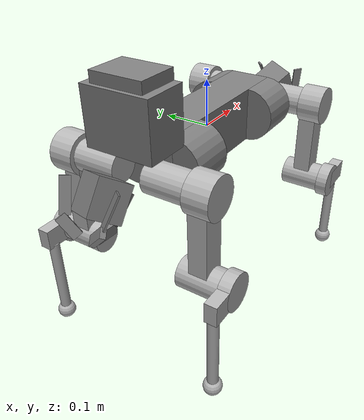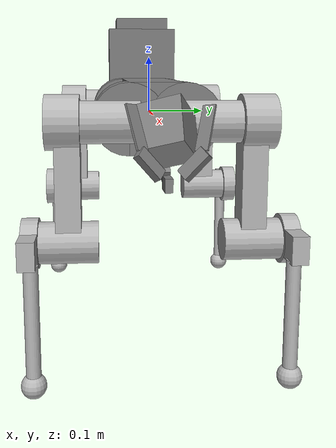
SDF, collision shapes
<?xml version='1.0' encoding='utf-8'?>
<sdf version="1.6">
  <model name="cerberus_anymal_c_sensor_config_1">
    <link name="base">
      <pose>0 0 0 0 0 0</pose>
      <inertial>
        <pose>-0.0143195 -0.0001053 0.0059904 0 0 0</pose>
        <mass>29.23832</mass>
        <inertia>
          <ixx>0.236867</ixx>
          <ixy>0.00846724</ixy>
          <ixz>0.0854364</ixz>
          <iyy>2.06849</iyy>
          <iyz>-0.000253399</iyz>
          <izz>2.09006</izz>
        </inertia>
      </inertial>
      <collision name="base_collision">
        <pose>0 0 0 0 0 0</pose>
        <geometry>
          <box>
            <size>0.377 0.091 0.117</size>
          </box>
        </geometry>
      </collision>
      <collision name="base_collision_1">
        <pose>0.141375 0.0455 0 0 1.5708 0</pose>
        <geometry>
          <cylinder>
            <length>0.09425</length>
            <radius>0.0585</radius>
          </cylinder>
        </geometry>
      </collision>
      <collision name="base_collision_2">
        <pose>-0.141375 0.0455 0 0 1.5708 0</pose>
        <geometry>
          <cylinder>
            <length>0.09425</length>
            <radius>0.0585</radius>
          </cylinder>
        </geometry>
      </collision>
      <collision name="base_collision_3">
        <pose>0.141375 -0.0455 0 0 1.5708 0</pose>
        <geometry>
          <cylinder>
            <length>0.09425</length>
            <radius>0.0585</radius>
          </cylinder>
        </geometry>
      </collision>
      <collision name="base_collision_4">
        <pose>-0.141375 -0.0455 0 0 1.5708 0</pose>
        <geometry>
          <cylinder>
            <length>0.09425</length>
            <radius>0.0585</radius>
          </cylinder>
        </geometry>
      </collision>
      <collision name="base_fixed_joint_lump__alphasense_mesh_collision_5">
        <pose>-0.2272387 0 0.15275 0 0 0</pose>
        <geometry>
          <box>
            <size>0.0832 0.10725 0.0637</size>
          </box>
        </geometry>
      </collision>
      <collision name="base_fixed_joint_lump__bpearl_front_collision_6">
        <pose>0.32600555 0 -0.00653445 -2.85388 -0.54666 -0.517507</pose>
        <geometry>
          <box>
            <size>0.065 0.065 0.0715</size>
          </box>
        </geometry>
      </collision>
      <collision name="base_fixed_joint_lump__bpearl_front_protection_bars_collision_collision_7">
        <pose>0.2852694 0 -0.050349 3.14159 0.893609 3.14159</pose>
        <geometry>
          <box>
            <size>0.0195 0.0117 0.065</size>
          </box>
        </geometry>
      </collision>
      <collision name="base_fixed_joint_lump__bpearl_front_protection_bars_collision_collision_8">
        <pose>0.329524 0 -0.0772876 1e-06 1.52542 1e-06</pose>
        <geometry>
          <box>
            <size>0.0195 0.01105 0.0442</size>
          </box>
        </geometry>
      </collision>
      <collision name="base_fixed_joint_lump__bpearl_front_protection_bars_collision_collision_9">
        <pose>0.3639922 -0.0448136 0.00477295 -2.68278 -0.125844 -0.83529</pose>
        <geometry>
          <box>
            <size>0.0195 0.00325 0.065</size>
          </box>
        </geometry>
      </collision>
      <collision name="base_fixed_joint_lump__bpearl_front_protection_bars_collision_collision_10">
        <pose>0.3802565 -0.02888015 -0.04176445 -2.61177 0.516776 -0.491692</pose>
        <geometry>
          <box>
            <size>0.0195 0.0104 0.0442</size>
          </box>
        </geometry>
      </collision>
      <collision name="base_fixed_joint_lump__bpearl_front_protection_bars_collision_collision_11">
        <pose>0.3620292 0.04672005 0.0033982 2.66301 -0.103127 0.880443</pose>
        <geometry>
          <box>
            <size>0.0195 0.00325 0.065</size>
          </box>
        </geometry>
      </collision>
      <collision name="base_fixed_joint_lump__bpearl_front_protection_bars_collision_collision_12">
        <pose>0.37899095 0.03010865 -0.0426504 2.58142 0.531321 0.5194</pose>
        <geometry>
          <box>
            <size>0.0195 0.0104 0.0442</size>
          </box>
        </geometry>
      </collision>
      <collision name="base_fixed_joint_lump__bpearl_rear_collision_13">
        <pose>-0.32600555 0 -0.00653445 -2.85388 -0.54666 2.62409</pose>
        <geometry>
          <box>
            <size>0.065 0.065 0.0715</size>
          </box>
        </geometry>
      </collision>
      <collision name="base_fixed_joint_lump__bpearl_rear_protection_bars_collision_collision_14">
        <pose>-0.2852694 0 -0.050349 3.14159 0.893609 0</pose>
        <geometry>
          <box>
            <size>0.0195 0.0117 0.065</size>
          </box>
        </geometry>
      </collision>
      <collision name="base_fixed_joint_lump__bpearl_rear_protection_bars_collision_collision_15">
        <pose>-0.329524 0 -0.0772876 1e-06 1.52542 -3.14159</pose>
        <geometry>
          <box>
            <size>0.0195 0.01105 0.0442</size>
          </box>
        </geometry>
      </collision>
      <collision name="base_fixed_joint_lump__bpearl_rear_protection_bars_collision_collision_16">
        <pose>-0.3676608 0.04063735 0.00734175 -2.72553 -0.168473 2.39838</pose>
        <geometry>
          <box>
            <size>0.0195 0.00325 0.065</size>
          </box>
        </geometry>
      </collision>
      <collision name="base_fixed_joint_lump__bpearl_rear_protection_bars_collision_collision_17">
        <pose>-0.38262055 0.0261885 -0.0401089 -2.67308 0.489917 2.70612</pose>
        <geometry>
          <box>
            <size>0.0195 0.0104 0.0442</size>
          </box>
        </geometry>
      </collision>
      <collision name="base_fixed_joint_lump__bpearl_rear_protection_bars_collision_collision_18">
        <pose>-0.35998625 -0.04849845 0.0019682 2.64433 -0.079552 -2.21655</pose>
        <geometry>
          <box>
            <size>0.0195 0.00325 0.065</size>
          </box>
        </geometry>
      </collision>
      <collision name="base_fixed_joint_lump__bpearl_rear_protection_bars_collision_collision_19">
        <pose>-0.3776747 -0.0312546 -0.0435721 2.55129 0.546584 -2.59477</pose>
        <geometry>
          <box>
            <size>0.0195 0.0104 0.0442</size>
          </box>
        </geometry>
      </collision>
      <collision name="base_fixed_joint_lump__perception_head_cage_collision_20">
        <pose>-0.23137205 0 0.10491 0 0 0</pose>
        <geometry>
          <box>
            <size>0.0919815 0.140036 0.11492</size>
          </box>
        </geometry>
      </collision>
      <collision name="base_fixed_joint_lump__imu_link_collision_21">
        <pose>0.16172 0.0054275 0.033332 0 0 1.5708</pose>
        <geometry>
          <box>
            <size>0.0156 0.0156 0.0065</size>
          </box>
        </geometry>
      </collision>
      <visual name="base_visual">
        <pose>0 0 0 0 0 0</pose>
        <geometry>
          <mesh>
            <scale>0.65 0.65 0.65</scale>
            <uri>meshes/base.dae</uri>
          </mesh>
        </geometry>
      </visual>
      <visual name="base_fixed_joint_lump__LF_HAA_visual_1">
        <pose>0.194935 0.0676 0 2.61799 0 0</pose>
        <geometry>
          <mesh>
            <scale>0.65 0.65 0.65</scale>
            <uri>meshes/drive.dae</uri>
          </mesh>
        </geometry>
      </visual>
      <visual name="base_fixed_joint_lump__LH_HAA_visual_2">
        <pose>-0.194935 0.0676 0 -2.61799 0 3.14159</pose>
        <geometry>
          <mesh>
            <scale>0.65 0.65 0.65</scale>
            <uri>meshes/drive.dae</uri>
          </mesh>
        </geometry>
      </visual>
      <visual name="base_fixed_joint_lump__RF_HAA_visual_3">
        <pose>0.194935 -0.0676 0 -2.61799 0 0</pose>
        <geometry>
          <mesh>
            <scale>0.65 0.65 0.65</scale>
            <uri>meshes/drive.dae</uri>
          </mesh>
        </geometry>
      </visual>
      <visual name="base_fixed_joint_lump__RH_HAA_visual_4">
        <pose>-0.194935 -0.0676 0 2.61799 0 3.14159</pose>
        <geometry>
          <mesh>
            <scale>0.65 0.65 0.65</scale>
            <uri>meshes/drive.dae</uri>
          </mesh>
        </geometry>
      </visual>
      <visual name="base_fixed_joint_lump__battery_visual_5">
        <pose>0 0 0 0 0 0</pose>
        <geometry>
          <mesh>
            <scale>0.65 0.65 0.65</scale>
            <uri>meshes/battery.dae</uri>
          </mesh>
        </geometry>
      </visual>
      <visual name="base_fixed_joint_lump__bottom_shell_visual_6">
        <pose>0 0 0 0 0 0</pose>
        <geometry>
          <mesh>
            <scale>0.65 0.65 0.65</scale>
            <uri>meshes/bottom_shell.dae</uri>
          </mesh>
        </geometry>
      </visual>
      <visual name="base_fixed_joint_lump__handle_visual_7">
        <pose>0 0 0 0 0 0</pose>
        <geometry>
          <mesh>
            <scale>0.65 0.65 0.65</scale>
            <uri>meshes/handle.dae</uri>
          </mesh>
        </geometry>
      </visual>
      <visual name="base_fixed_joint_lump__hatch_visual_8">
        <pose>0.0754 0 0.04745 0 0 0</pose>
        <geometry>
          <mesh>
            <scale>0.65 0.65 0.65</scale>
            <uri>meshes/hatch.dae</uri>
          </mesh>
        </geometry>
      </visual>
      <visual name="base_fixed_joint_lump__remote_visual_9">
        <pose>0 0 0 0 0 0</pose>
        <geometry>
          <mesh>
            <scale>0.65 0.65 0.65</scale>
            <uri>meshes/remote.dae</uri>
          </mesh>
        </geometry>
      </visual>
      <visual name="base_fixed_joint_lump__alphasense_mesh_visual_10">
        <pose>-0.2366 0 0 0 0 0</pose>
        <geometry>
          <mesh>
            <scale>0.00065 0.00065 0.00065</scale>
            <uri>meshes/alphasense.stl</uri>
          </mesh>
        </geometry>
        <material>
          <ambient>0.5 0.5 0.5 1</ambient>
          <diffuse>0.5 0.5 0.5 1</diffuse>
          <specular>0.5 0.5 0.5 1</specular>
        </material>
      </visual>
      <visual name="base_fixed_joint_lump__bpearl_front_visual_11">
        <pose>0.3055 0 0.02275 -2.85388 -0.54666 -0.517507</pose>
        <geometry>
          <mesh>
            <scale>0.00065 0.00065 0.00065</scale>
            <uri>meshes/rslidar_bpearl.stl</uri>
          </mesh>
        </geometry>
        <material>
          <ambient>0.5 0.5 0.5 1</ambient>
          <diffuse>0.5 0.5 0.5 1</diffuse>
          <specular>0.5 0.5 0.5 1</specular>
        </material>
      </visual>
      <visual name="base_fixed_joint_lump__bpearl_front_protection_bars_visual_12">
        <pose>0.26942175 0 0 0 0 -3.14159</pose>
        <geometry>
          <mesh>
            <scale>0.00065 0.00065 0.00065</scale>
            <uri>meshes/bpearl_protection_bars.stl</uri>
          </mesh>
        </geometry>
        <material>
          <ambient>0.5 0.5 0.5 1</ambient>
          <diffuse>0.5 0.5 0.5 1</diffuse>
          <specular>0.5 0.5 0.5 1</specular>
        </material>
      </visual>
      <visual name="base_fixed_joint_lump__bpearl_rear_visual_13">
        <pose>-0.3055 0 0.02275 -2.85388 -0.54666 2.62409</pose>
        <geometry>
          <mesh>
            <scale>0.00065 0.00065 0.00065</scale>
            <uri>meshes/rslidar_bpearl.stl</uri>
          </mesh>
        </geometry>
        <material>
          <ambient>0.5 0.5 0.5 1</ambient>
          <diffuse>0.5 0.5 0.5 1</diffuse>
          <specular>0.5 0.5 0.5 1</specular>
        </material>
      </visual>
      <visual name="base_fixed_joint_lump__bpearl_rear_protection_bars_visual_14">
        <pose>-0.26942175 0 0 0 0 0</pose>
        <geometry>
          <mesh>
            <scale>0.00065 0.00065 0.00065</scale>
            <uri>meshes/bpearl_protection_bars.stl</uri>
          </mesh>
        </geometry>
        <material>
          <ambient>0.5 0.5 0.5 1</ambient>
          <diffuse>0.5 0.5 0.5 1</diffuse>
          <specular>0.5 0.5 0.5 1</specular>
        </material>
      </visual>
      <visual name="base_fixed_joint_lump__perception_head_cage_visual_15">
        <pose>-0.2366 0 0 0 0 0</pose>
        <geometry>
          <mesh>
            <scale>0.00065 0.00065 0.00065</scale>
            <uri>meshes/perception_head.stl</uri>
          </mesh>
        </geometry>
        <material>
          <ambient>0.5 0.5 0.5 1</ambient>
          <diffuse>0.5 0.5 0.5 1</diffuse>
          <specular>0.5 0.5 0.5 1</specular>
        </material>
      </visual>
      <visual name="base_fixed_joint_lump__lidar_visual_16">
        <pose>-0.2366 0 0.09243 0 0 -1.5708</pose>
        <geometry>
          <mesh>
            <scale>0.65 0.65 0.65</scale>
            <uri>meshes/lidar.dae</uri>
          </mesh>
        </geometry>
      </visual>
      <visual name="base_fixed_joint_lump__top_shell_visual_17">
        <pose>0 0 0 0 0 0</pose>
        <geometry>
          <mesh>
            <scale>0.65 0.65 0.65</scale>
            <uri>meshes/top_shell.dae</uri>
          </mesh>
        </geometry>
      </visual>
      <visual name="base_fixed_joint_lump__imu_link_visual_18">
        <pose>0.16172 0.0054275 0.033332 0 0 1.5708</pose>
        <geometry>
          <box>
            <size>0.0156 0.0156 0.0065</size>
          </box>
        </geometry>
      </visual>
      <!-- Sensors -->
      <sensor name="imu_sensor" type="imu">
        <always_on>1</always_on>
        <update_rate>400</update_rate>
        <imu>
                    <enable_orientation>0</enable_orientation>
                    <angular_velocity>
                        <x>
                            <noise type="gaussian">
                                <mean>0</mean>
                                <stddev>0.009</stddev>
                                <bias_mean>0.00075</bias_mean>
                                <bias_stddev>0.005</bias_stddev>
                                <dynamic_bias_stddev>0.00002</dynamic_bias_stddev>
                                <dynamic_bias_correlation_time>400.0</dynamic_bias_correlation_time>
                                <precision>0.00025</precision>
                            </noise>
                        </x>
                        <y>
                            <noise type="gaussian">
                                <mean>0</mean>
                                <stddev>0.009</stddev>
                                <bias_mean>0.00075</bias_mean>
                                <bias_stddev>0.005</bias_stddev>
                                <dynamic_bias_stddev>0.00002</dynamic_bias_stddev>
                                <dynamic_bias_correlation_time>400.0</dynamic_bias_correlation_time>
                                <precision>0.00025</precision>
                            </noise>
                        </y>
                        <z>
                            <noise type="gaussian">
                                <mean>0</mean>
                                <stddev>0.009</stddev>
                                <bias_mean>0.00075</bias_mean>
                                <bias_stddev>0.005</bias_stddev>
                                <dynamic_bias_stddev>0.00002</dynamic_bias_stddev>
                                <dynamic_bias_correlation_time>400.0</dynamic_bias_correlation_time>
                                <precision>0.00025</precision>
                            </noise>
                        </z>
                    </angular_velocity>
                    <linear_acceleration>
                        <x>
                            <noise type="gaussian">
                                <mean>0</mean>
                                <stddev>0.021</stddev>
                                <bias_mean>0.05</bias_mean>
                                <bias_stddev>0.0075</bias_stddev>
                                <dynamic_bias_stddev>0.000375</dynamic_bias_stddev>
                                <dynamic_bias_correlation_time>175.0</dynamic_bias_correlation_time>
                                <precision>0.005</precision>
                            </noise>
                        </x>
                        <y>
                            <noise type="gaussian">
                                <mean>0</mean>
                                <stddev>0.021</stddev>
                                <bias_mean>0.05</bias_mean>
                                <bias_stddev>0.0075</bias_stddev>
                                <dynamic_bias_stddev>0.000375</dynamic_bias_stddev>
                                <dynamic_bias_correlation_time>175.0</dynamic_bias_correlation_time>
                                <precision>0.005</precision>
                            </noise>
                        </y>
                        <z>
                            <noise type="gaussian">
                                <mean>0</mean>
                                <stddev>0.021</stddev>
                                <bias_mean>0.05</bias_mean>
                                <bias_stddev>0.0075</bias_stddev>
                                <dynamic_bias_stddev>0.000375</dynamic_bias_stddev>
                                <dynamic_bias_correlation_time>175.0</dynamic_bias_correlation_time>
                                <precision>0.005</precision>
                            </noise>
                        </z>
                    </linear_acceleration>
                </imu>
        <pose frame="">0.249 0.008 0.046 0.000 -0.000 1.571</pose>
      </sensor>
      <sensor name="perception_head_imu_sensor" type="imu">
        <always_on>1</always_on>
        <update_rate>200</update_rate>
        <imu>
                    <enable_orientation>0</enable_orientation>
                    <angular_velocity>
                        <x>
                            <noise type="gaussian">
                                <mean>0</mean>
                                <stddev>0.009</stddev>
                                <bias_mean>0.00075</bias_mean>
                                <bias_stddev>0.005</bias_stddev>
                                <dynamic_bias_stddev>0.00002</dynamic_bias_stddev>
                                <dynamic_bias_correlation_time>400.0</dynamic_bias_correlation_time>
                                <precision>0.00025</precision>
                            </noise>
                        </x>
                        <y>
                            <noise type="gaussian">
                                <mean>0</mean>
                                <stddev>0.009</stddev>
                                <bias_mean>0.00075</bias_mean>
                                <bias_stddev>0.005</bias_stddev>
                                <dynamic_bias_stddev>0.00002</dynamic_bias_stddev>
                                <dynamic_bias_correlation_time>400.0</dynamic_bias_correlation_time>
                                <precision>0.00025</precision>
                            </noise>
                        </y>
                        <z>
                            <noise type="gaussian">
                                <mean>0</mean>
                                <stddev>0.009</stddev>
                                <bias_mean>0.00075</bias_mean>
                                <bias_stddev>0.005</bias_stddev>
                                <dynamic_bias_stddev>0.00002</dynamic_bias_stddev>
                                <dynamic_bias_correlation_time>400.0</dynamic_bias_correlation_time>
                                <precision>0.00025</precision>
                            </noise>
                        </z>
                    </angular_velocity>
                    <linear_acceleration>
                        <x>
                            <noise type="gaussian">
                                <mean>0</mean>
                                <stddev>0.021</stddev>
                                <bias_mean>0.05</bias_mean>
                                <bias_stddev>0.0075</bias_stddev>
                                <dynamic_bias_stddev>0.000375</dynamic_bias_stddev>
                                <dynamic_bias_correlation_time>175.0</dynamic_bias_correlation_time>
                                <precision>0.005</precision>
                            </noise>
                        </x>
                        <y>
                            <noise type="gaussian">
                                <mean>0</mean>
                                <stddev>0.021</stddev>
                                <bias_mean>0.05</bias_mean>
                                <bias_stddev>0.0075</bias_stddev>
                                <dynamic_bias_stddev>0.000375</dynamic_bias_stddev>
                                <dynamic_bias_correlation_time>175.0</dynamic_bias_correlation_time>
                                <precision>0.005</precision>
                            </noise>
                        </y>
                        <z>
                            <noise type="gaussian">
                                <mean>0</mean>
                                <stddev>0.021</stddev>
                                <bias_mean>0.05</bias_mean>
                                <bias_stddev>0.0075</bias_stddev>
                                <dynamic_bias_stddev>0.000375</dynamic_bias_stddev>
                                <dynamic_bias_correlation_time>175.0</dynamic_bias_correlation_time>
                                <precision>0.005</precision>
                            </noise>
                        </z>
                    </linear_acceleration>
                </imu>
        <pose frame="">-0.327 -0.005 0.206 0.000 0.000 -1.571</pose>
      </sensor>
      <sensor name="front_laser" type="gpu_lidar">
        <visualize>0</visualize>
        <update_rate>10</update_rate>
        <lidar>
          <scan>
            <horizontal>
              <samples>1800</samples>
              <resolution>1.0</resolution>
              <min_angle>-3.14159</min_angle>
              <max_angle>3.14159</max_angle>
            </horizontal>
            <vertical>
              <samples>16</samples>
              <resolution>1</resolution>
              <min_angle>-0.261799</min_angle>
              <max_angle>0.261799</max_angle>
            </vertical>
          </scan>
          <range>
            <min>0.05</min>
            <max>100</max>
            <resolution>0.01</resolution>
          </range>
          <noise>
            <type>gaussian</type>
            <mean>0</mean>
            <stddev>0.01</stddev>
          </noise>
        </lidar>
        <pose frame="">-0.364 0.000 0.142 0.000 0.000 -1.571</pose>
      </sensor>
      <sensor name="front_bpearl" type="gpu_lidar">
        <visualize>0</visualize>
        <update_rate>10</update_rate>
        <lidar>
          <scan>
            <horizontal>
              <samples>440</samples>
              <resolution>1</resolution>
              <min_angle>-3.14159</min_angle>
              <max_angle>3.14159</max_angle>
            </horizontal>
            <vertical>
              <samples>32</samples>
              <resolution>1</resolution>
              <min_angle>0.040360739</min_angle>
              <max_angle>1.562069681</max_angle>
            </vertical>
          </scan>
          <range>
            <min>0.3</min>
            <max>31</max>
            <resolution>0.001</resolution>
          </range>
          <noise>
            <type>gaussian</type>
            <mean>0</mean>
            <stddev>0.008</stddev>
          </noise>
        </lidar>
        <pose frame="">0.524 0.000 -0.042 -2.576 0.245 -1.936</pose>
      </sensor>
      <sensor name="rear_bpearl" type="gpu_lidar">
        <visualize>0</visualize>
        <update_rate>10</update_rate>
        <lidar>
          <scan>
            <horizontal>
              <samples>440</samples>
              <resolution>1</resolution>
              <min_angle>-3.14159</min_angle>
              <max_angle>3.14159</max_angle>
            </horizontal>
            <vertical>
              <samples>32</samples>
              <resolution>1</resolution>
              <min_angle>0.040360739</min_angle>
              <max_angle>1.562069681</max_angle>
            </vertical>
          </scan>
          <range>
            <min>0.3</min>
            <max>31</max>
            <resolution>0.001</resolution>
          </range>
          <noise>
            <type>gaussian</type>
            <mean>0</mean>
            <stddev>0.008</stddev>
          </noise>
        </lidar>
        <pose frame="">-0.524 -0.000 -0.042 -2.576 0.245 1.206</pose>
      </sensor>
      <sensor name="camera_0" type="camera">
        <always_on>1</always_on>
        <update_rate>20</update_rate>
        <pose frame="">-0.400 -0.050 0.229 -0.006 0.011 3.133</pose>
        <camera name="camera_0">
          <horizontal_fov>2.19911</horizontal_fov>
          <lens>
            <intrinsics>
              <!-- fx = fy = width / ( 2 * tan (hfov / 2 ) ) -->
              <fx>183.43</fx>
              <fy>183.43</fy>
              <!-- cx = ( width + 1 ) / 2 -->
              <cx>360.5</cx>
              <!-- cy = ( height + 1 ) / 2 -->
              <cy>270.5</cy>
              <s>0</s>
            </intrinsics>
          </lens>
          <image>
            <width>720</width>
            <height>540</height>
          </image>
          <clip>
            <near>0.02</near>
            <far>100</far>
          </clip>
            <noise>
            <type>gaussian</type>
              <mean>0</mean>
              <stddev>0.007</stddev>
            </noise>
        </camera>
      </sensor>
      <sensor name="camera_1" type="camera">
        <always_on>1</always_on>
        <update_rate>20</update_rate>
        <pose frame="">-0.400 0.049 0.229 -0.006 0.0 3.139</pose>
        <camera name="camera_1">
          <horizontal_fov>2.19911</horizontal_fov>
          <lens>
            <intrinsics>
              <!-- fx = fy = width / ( 2 * tan (hfov / 2 ) ) -->
              <fx>183.43</fx>
              <fy>183.43</fy>
              <!-- cx = ( width + 1 ) / 2 -->
              <cx>360.5</cx>
              <!-- cy = ( height + 1 ) / 2 -->
              <cy>270.5</cy>
              <s>0</s>
            </intrinsics>
          </lens>
          <image>
            <width>728</width>
            <height>544</height>
          </image>
          <clip>
            <near>0.02</near>
            <far>100</far>
          </clip>
            <noise>
            <type>gaussian</type>
              <mean>0</mean>
              <stddev>0.007</stddev>
            </noise>
        </camera>
      </sensor>
      <sensor name="camera_2" type="camera">
        <always_on>1</always_on>
        <update_rate>20</update_rate>
        <pose frame="">-0.379 -0.050 0.265 -0.009 -1.572 -0.004</pose>
        <camera name="camera_2">
          <horizontal_fov>2.19911</horizontal_fov>
          <lens>
            <intrinsics>
              <!-- fx = fy = width / ( 2 * tan (hfov / 2 ) ) -->
              <fx>183.43</fx>
              <fy>183.43</fy>
              <!-- cx = ( width + 1 ) / 2 -->
              <cx>360.5</cx>
              <!-- cy = ( height + 1 ) / 2 -->
              <cy>270.5</cy>
              <s>0</s>
            </intrinsics>
          </lens>
          <image>
            <width>720</width>
            <height>540</height>
          </image>
          <clip>
            <near>0.02</near>
            <far>100</far>
          </clip>
            <noise>
            <type>gaussian</type>
              <mean>0</mean>
              <stddev>0.007</stddev>
            </noise>
        </camera>
      </sensor>
      <sensor name="camera_3" type="camera">
        <always_on>1</always_on>
        <update_rate>20</update_rate>
        <pose frame="">-0.348 -0.073 0.237 0.004 -0.172 -1.575</pose>
        <camera name="camera_3">
          <horizontal_fov>2.19911</horizontal_fov>
          <lens>
            <intrinsics>
              <!-- fx = fy = width / ( 2 * tan (hfov / 2 ) ) -->
              <fx>183.43</fx>
              <fy>183.43</fy>
              <!-- cx = ( width + 1 ) / 2 -->
              <cx>360.5</cx>
              <!-- cy = ( height + 1 ) / 2 -->
              <cy>270.5</cy>
              <s>0</s>
            </intrinsics>
          </lens>
          <image>
            <width>720</width>
            <height>540</height>
          </image>
          <clip>
            <near>0.02</near>
            <far>100</far>
          </clip>
            <noise>
            <type>gaussian</type>
              <mean>0</mean>
              <stddev>0.007</stddev>
            </noise>
        </camera>
      </sensor>
      <sensor name="camera_4" type="camera">
        <always_on>1</always_on>
        <update_rate>20</update_rate>
        <pose frame="">-0.399 -0.000 0.228 -0.009 -0.002 3.136</pose>
        <camera name="camera_4">
          <horizontal_fov>2.19911</horizontal_fov>
          <lens>
            <intrinsics>
              <!-- fx = fy = width / ( 2 * tan (hfov / 2 ) ) -->
              <fx>183.43</fx>
              <fy>183.43</fy>
              <!-- cx = ( width + 1 ) / 2 -->
              <cx>360.5</cx>
              <!-- cy = ( height + 1 ) / 2 -->
              <cy>270.5</cy>
              <s>0</s>
            </intrinsics>
          </lens>
          <image>
            <width>720</width>
            <height>540</height>
          </image>
          <clip>
            <near>0.02</near>
            <far>100</far>
          </clip>
            <noise>
            <type>gaussian</type>
              <mean>0</mean>
              <stddev>0.007</stddev>
            </noise>
        </camera>
      </sensor>
      <sensor name="camera_5" type="camera">
        <always_on>1</always_on>
        <update_rate>20</update_rate>
        <pose frame="">-0.347 0.072 0.236 -0.012 -0.171 1.569</pose>
        <camera name="camera_5">
          <horizontal_fov>2.19911</horizontal_fov>
          <lens>
            <intrinsics>
              <!-- fx = fy = width / ( 2 * tan (hfov / 2 ) ) -->
              <fx>183.43</fx>
              <fy>183.43</fy>
              <!-- cx = ( width + 1 ) / 2 -->
              <cx>360.5</cx>
              <!-- cy = ( height + 1 ) / 2 -->
              <cy>270.5</cy>
              <s>0</s>
            </intrinsics>
          </lens>
          <image>
            <width>720</width>
            <height>540</height>
          </image>
          <clip>
            <near>0.02</near>
            <far>100</far>
          </clip>
            <noise>
            <type>gaussian</type>
              <mean>0</mean>
              <stddev>0.007</stddev>
            </noise>
        </camera>
      </sensor>
      <sensor name="camera_6" type="camera">
        <always_on>1</always_on>
        <update_rate>20</update_rate>
        <pose frame="">-0.379 0.050 0.265 -0.009 -1.572 -0.004</pose>
        <camera name="camera_6">
          <horizontal_fov>2.19911</horizontal_fov>
          <lens>
            <intrinsics>
              <!-- fx = fy = width / ( 2 * tan (hfov / 2 ) ) -->
              <fx>183.43</fx>
              <fy>183.43</fy>
              <!-- cx = ( width + 1 ) / 2 -->
              <cx>360.5</cx>
              <!-- cy = ( height + 1 ) / 2 -->
              <cy>270.5</cy>
              <s>0</s>
            </intrinsics>
          </lens>
          <image>
            <width>720</width>
            <height>540</height>
          </image>
          <clip>
            <near>0.02</near>
            <far>100</far>
          </clip>
            <noise>
            <type>gaussian</type>
              <mean>0</mean>
              <stddev>0.007</stddev>
            </noise>
        </camera>
      </sensor>
      <!-- Lights -->
    </link>
    <link name="LF_HIP">
      <pose>0.194935 0.0676 0 2.61799 0 0</pose>
      <inertial>
        <pose>0.03682965 -0.0099411 -0.0053937 0 0 0</pose>
        <mass>2.781</mass>
        <inertia>
          <ixx>0.00329553</ixx>
          <ixy>-1.03882e-05</ixy>
          <ixz>0.000107062</ixz>
          <iyy>0.00504435</iyy>
          <iyz>-0.000319492</iyz>
          <izz>0.0057269</izz>
        </inertia>
      </inertial>
      <collision name="LF_HIP_fixed_joint_lump__LF_HFE_collision">
        <pose>0.038935 -0.007774 -0.00448825 -3.14159 -1.0472 -1.5708</pose>
        <geometry>
          <cylinder>
            <length>0.091</length>
            <radius>0.0325</radius>
          </cylinder>
        </geometry>
      </collision>
      <visual name="LF_HIP_fixed_joint_lump__LF_hip_fixed_visual">
        <pose>0 0 0 -2.61799 0 0</pose>
        <geometry>
          <mesh>
            <scale>0.65 0.65 0.65</scale>
            <uri>meshes/hip_l.dae</uri>
          </mesh>
        </geometry>
      </visual>
      <visual name="LF_HIP_fixed_joint_lump__LF_HFE_visual_1">
        <pose>0.038935 -0.0471783 -0.02723825 -3.14159 0.523599 -1.5708</pose>
        <geometry>
          <mesh>
            <scale>0.65 0.65 0.65</scale>
            <uri>meshes/drive.dae</uri>
          </mesh>
        </geometry>
      </visual>
    </link>
    <joint name="LF_HAA" type="revolute">
      <child>LF_HIP</child>
      <parent>base</parent>
      <axis>
        <xyz>1 0 0</xyz>
        <limit>
          <lower>-0.72</lower>
          <upper>0.49</upper>
          <effort>80</effort>
          <velocity>7.5</velocity>
        </limit>
        <dynamics>
          <damping>0</damping>
          <friction>0</friction>
          <spring_reference>0</spring_reference>
          <spring_stiffness>0</spring_stiffness>
        </dynamics>
        <use_parent_model_frame>0</use_parent_model_frame>
      </axis>
    </joint>
    <link name="LF_THIGH">
      <pose>0.23387 0.1220765 0 0 0 1.5708</pose>
      <inertial>
        <pose>0.02002975 2.99e-05 -0.1597024 0 0 0</pose>
        <mass>3.071</mass>
        <inertia>
          <ixx>0.0295638</ixx>
          <ixy>4.42919e-05</ixy>
          <ixz>0.00414243</ixz>
          <iyy>0.029904</iyy>
          <iyz>9.448e-05</iyz>
          <izz>0.00486108</izz>
        </inertia>
      </inertial>
      <collision name="LF_THIGH_fixed_joint_lump__LF_thigh_fixed_collision">
        <pose>0.026 0 0 1.5708 0 -1.5708</pose>
        <geometry>
          <cylinder>
            <length>0.052</length>
            <radius>0.04225</radius>
          </cylinder>
        </geometry>
      </collision>
      <collision name="LF_THIGH_fixed_joint_lump__LF_thigh_fixed_collision_1">
        <pose>0.0195 0 -0.0918541 0 0 -1.5708</pose>
        <geometry>
          <box>
            <size>0.04875 0.039 0.18370755</size>
          </box>
        </geometry>
      </collision>
      <collision name="LF_THIGH_fixed_joint_lump__LF_KFE_collision_2">
        <pose>0.019695 0 -0.18525 0 1.5708 0</pose>
        <geometry>
          <cylinder>
            <length>0.091</length>
            <radius>0.0325</radius>
          </cylinder>
        </geometry>
      </collision>
      <visual name="LF_THIGH_fixed_joint_lump__LF_thigh_fixed_visual">
        <pose>0 0 0 0 0 -1.5708</pose>
        <geometry>
          <mesh>
            <scale>0.65 0.65 0.65</scale>
            <uri>meshes/thigh.dae</uri>
          </mesh>
        </geometry>
      </visual>
      <visual name="LF_THIGH_fixed_joint_lump__LF_KFE_visual_1">
        <pose>0.065195 0 -0.18525 0 0 0</pose>
        <geometry>
          <mesh>
            <scale>0.65 0.65 0.65</scale>
            <uri>meshes/drive.dae</uri>
          </mesh>
        </geometry>
      </visual>
    </link>
    <joint name="LF_HFE" type="revolute">
      <child>LF_THIGH</child>
      <parent>LF_HIP</parent>
      <axis>
        <xyz>1 0 0</xyz>
        <limit>
          <lower>-9.42478</lower>
          <upper>9.42478</upper>
          <effort>80</effort>
          <velocity>7.5</velocity>
        </limit>
        <dynamics>
          <damping>0</damping>
          <friction>0</friction>
          <spring_reference>0</spring_reference>
          <spring_stiffness>0</spring_stiffness>
        </dynamics>
        <use_parent_model_frame>0</use_parent_model_frame>
      </axis>
    </joint>
    <link name="LF_SHANK">
      <pose>0.23387 0.1872715 -0.18525 0 0 1.5708</pose>
      <inertial>
        <pose>0.0035503 -0.03981445 -0.052429 0 0 0</pose>
        <mass>0.58842</mass>
        <inertia>
          <ixx>0.0101611</ixx>
          <ixy>-5.35713e-05</ixy>
          <ixz>-2.26604e-05</ixz>
          <iyy>0.00881038</iyy>
          <iyz>-0.00181935</iyz>
          <izz>0.00154978</izz>
        </inertia>
      </inertial>
      <collision name="LF_SHANK_fixed_joint_lump__LF_shank_fixed_collision">
        <pose>0.013 0 0 1.5708 0 -1.5708</pose>
        <geometry>
          <cylinder>
            <length>0.026</length>
            <radius>0.039</radius>
          </cylinder>
        </geometry>
      </collision>
      <collision name="LF_SHANK_fixed_joint_lump__LF_shank_fixed_collision_1">
        <pose>0.013 -0.03737435 0 1.5708 0 -1.5708</pose>
        <geometry>
          <box>
            <size>0.0747487 0.043875 0.026</size>
          </box>
        </geometry>
      </collision>
      <collision name="LF_SHANK_fixed_joint_lump__LF_FOOT_collision_2">
        <pose>0.0084825 -0.0571675 -0.10984025 0 0 -1.5708</pose>
        <geometry>
          <cylinder>
            <length>0.1836276</length>
            <radius>0.011375</radius>
          </cylinder>
        </geometry>
      </collision>
      <collision name="LF_SHANK_fixed_joint_lump__LF_FOOT_collision_3">
        <pose>0.0084825 -0.0571675 -0.2050555 0 0 -1.5708</pose>
        <geometry>
          <sphere>
            <radius>0.0195</radius>
          </sphere>
        </geometry>
      </collision>
      <visual name="LF_SHANK_fixed_joint_lump__LF_shank_fixed_visual">
        <pose>0 0 0 0 0 -1.5708</pose>
        <geometry>
          <mesh>
            <scale>0.65 0.65 0.65</scale>
            <uri>meshes/shank_l.dae</uri>
          </mesh>
        </geometry>
      </visual>
      <visual name="LF_SHANK_fixed_joint_lump__LF_FOOT_visual_1">
        <pose>0.0084825 -0.0571675 -0.2196805 0 0 -2.35619</pose>
        <geometry>
          <mesh>
            <scale>0.65 0.65 0.65</scale>
            <uri>meshes/foot.dae</uri>
          </mesh>
        </geometry>
      </visual>
    </link>
    <joint name="LF_KFE" type="revolute">
      <child>LF_SHANK</child>
      <parent>LF_THIGH</parent>
      <axis>
        <xyz>1 0 0</xyz>
        <limit>
          <lower>-9.42478</lower>
          <upper>9.42478</upper>
          <effort>80</effort>
          <velocity>7.5</velocity>
        </limit>
        <dynamics>
          <damping>0</damping>
          <friction>0</friction>
          <spring_reference>0</spring_reference>
          <spring_stiffness>0</spring_stiffness>
        </dynamics>
        <use_parent_model_frame>0</use_parent_model_frame>
      </axis>
    </joint>
    <link name="LH_HIP">
      <pose>-0.194935 0.0676 0 -2.61799 0 3.14159</pose>
      <inertial>
        <pose>0.03689595 0.0099411 -0.0053937 0 0 0</pose>
        <mass>2.781</mass>
        <inertia>
          <ixx>0.00329553</ixx>
          <ixy>-1.10053e-05</ixy>
          <ixz>-0.000109121</ixz>
          <iyy>0.00504617</iyy>
          <iyz>0.000319492</iyz>
          <izz>0.00572872</izz>
        </inertia>
      </inertial>
      <collision name="LH_HIP_fixed_joint_lump__LH_HFE_collision">
        <pose>0.038935 0.007774 -0.00448825 -3.14159 -1.0472 1.5708</pose>
        <geometry>
          <cylinder>
            <length>0.091</length>
            <radius>0.0325</radius>
          </cylinder>
        </geometry>
      </collision>
      <visual name="LH_HIP_fixed_joint_lump__LH_hip_fixed_visual">
        <pose>0 0 0 2.61799 0 0</pose>
        <geometry>
          <mesh>
            <scale>0.65 0.65 0.65</scale>
            <uri>meshes/hip_r.dae</uri>
          </mesh>
        </geometry>
      </visual>
      <visual name="LH_HIP_fixed_joint_lump__LH_HFE_visual_1">
        <pose>0.038935 0.0471783 -0.02723825 -3.14159 0.523599 1.5708</pose>
        <geometry>
          <mesh>
            <scale>0.65 0.65 0.65</scale>
            <uri>meshes/drive.dae</uri>
          </mesh>
        </geometry>
      </visual>
    </link>
    <joint name="LH_HAA" type="revolute">
      <child>LH_HIP</child>
      <parent>base</parent>
      <axis>
        <xyz>-1 0 0</xyz>
        <limit>
          <lower>-0.72</lower>
          <upper>0.49</upper>
          <effort>80</effort>
          <velocity>7.5</velocity>
        </limit>
        <dynamics>
          <damping>0</damping>
          <friction>0</friction>
          <spring_reference>0</spring_reference>
          <spring_stiffness>0</spring_stiffness>
        </dynamics>
        <use_parent_model_frame>0</use_parent_model_frame>
      </axis>
    </joint>
    <link name="LH_THIGH">
      <pose>-0.23387 0.1220765 0 0 0 1.5708</pose>
      <inertial>
        <pose>0.02002975 2.99e-05 -0.1597024 0 0 0</pose>
        <mass>3.071</mass>
        <inertia>
          <ixx>0.0295638</ixx>
          <ixy>4.43959e-05</ixy>
          <ixz>0.00414243</ixz>
          <iyy>0.029904</iyy>
          <iyz>0.000114794</iyz>
          <izz>0.00486108</izz>
        </inertia>
      </inertial>
      <collision name="LH_THIGH_fixed_joint_lump__LH_thigh_fixed_collision">
        <pose>0.026 0 0 1.5708 0 -1.5708</pose>
        <geometry>
          <cylinder>
            <length>0.052</length>
            <radius>0.04225</radius>
          </cylinder>
        </geometry>
      </collision>
      <collision name="LH_THIGH_fixed_joint_lump__LH_thigh_fixed_collision_1">
        <pose>0.0195 0 -0.0918541 0 0 -1.5708</pose>
        <geometry>
          <box>
            <size>0.04875 0.039 0.18370755</size>
          </box>
        </geometry>
      </collision>
      <collision name="LH_THIGH_fixed_joint_lump__LH_KFE_collision_2">
        <pose>0.019695 0 -0.18525 0 1.5708 0</pose>
        <geometry>
          <cylinder>
            <length>0.091</length>
            <radius>0.0325</radius>
          </cylinder>
        </geometry>
      </collision>
      <visual name="LH_THIGH_fixed_joint_lump__LH_thigh_fixed_visual">
        <pose>0 0 0 0 0 -1.5708</pose>
        <geometry>
          <mesh>
            <scale>0.65 0.65 0.65</scale>
            <uri>meshes/thigh.dae</uri>
          </mesh>
        </geometry>
      </visual>
      <visual name="LH_THIGH_fixed_joint_lump__LH_KFE_visual_1">
        <pose>0.065195 0 -0.18525 0 0 0</pose>
        <geometry>
          <mesh>
            <scale>0.65 0.65 0.65</scale>
            <uri>meshes/drive.dae</uri>
          </mesh>
        </geometry>
      </visual>
    </link>
    <joint name="LH_HFE" type="revolute">
      <child>LH_THIGH</child>
      <parent>LH_HIP</parent>
      <axis>
        <xyz>1 0 0</xyz>
        <limit>
          <lower>-9.42478</lower>
          <upper>9.42478</upper>
          <effort>80</effort>
          <velocity>7.5</velocity>
        </limit>
        <dynamics>
          <damping>0</damping>
          <friction>0</friction>
          <spring_reference>0</spring_reference>
          <spring_stiffness>0</spring_stiffness>
        </dynamics>
        <use_parent_model_frame>0</use_parent_model_frame>
      </axis>
    </joint>
    <link name="LH_SHANK">
      <pose>-0.23387 0.1872715 -0.18525 0 0 1.5708</pose>
      <inertial>
        <pose>0.0035503 0.03981445 -0.052429 0 0 0</pose>
        <mass>0.58842</mass>
        <inertia>
          <ixx>0.0101611</ixx>
          <ixy>5.35713e-05</ixy>
          <ixz>-2.26604e-05</ixz>
          <iyy>0.00881038</iyy>
          <iyz>0.00181935</iyz>
          <izz>0.00154978</izz>
        </inertia>
      </inertial>
      <collision name="LH_SHANK_fixed_joint_lump__LH_shank_fixed_collision">
        <pose>0.013 0 0 1.5708 0 -1.5708</pose>
        <geometry>
          <cylinder>
            <length>0.026</length>
            <radius>0.039</radius>
          </cylinder>
        </geometry>
      </collision>
      <collision name="LH_SHANK_fixed_joint_lump__LH_shank_fixed_collision_1">
        <pose>0.013 0.03737435 0 1.5708 0 -1.5708</pose>
        <geometry>
          <box>
            <size>0.0747487 0.043875 0.026</size>
          </box>
        </geometry>
      </collision>
      <collision name="LH_SHANK_fixed_joint_lump__LH_FOOT_collision_2">
        <pose>0.0084825 0.0571675 -0.10984025 0 0 -1.5708</pose>
        <geometry>
          <cylinder>
            <length>0.1836276</length>
            <radius>0.011375</radius>
          </cylinder>
        </geometry>
      </collision>
      <collision name="LH_SHANK_fixed_joint_lump__LH_FOOT_collision_3">
        <pose>0.0084825 0.0571675 -0.2050555 0 0 -1.5708</pose>
        <geometry>
          <sphere>
            <radius>0.0195</radius>
          </sphere>
        </geometry>
      </collision>
      <visual name="LH_SHANK_fixed_joint_lump__LH_shank_fixed_visual">
        <pose>0 0 0 0 0 1.5708</pose>
        <geometry>
          <mesh>
            <scale>0.65 0.65 0.65</scale>
            <uri>meshes/shank_r.dae</uri>
          </mesh>
        </geometry>
      </visual>
      <visual name="LH_SHANK_fixed_joint_lump__LH_FOOT_visual_1">
        <pose>0.0084825 0.0571675 -0.2196805 0 0 2.35619</pose>
        <geometry>
          <mesh>
            <scale>0.65 0.65 0.65</scale>
            <uri>meshes/foot.dae</uri>
          </mesh>
        </geometry>
      </visual>
    </link>
    <joint name="LH_KFE" type="revolute">
      <child>LH_SHANK</child>
      <parent>LH_THIGH</parent>
      <axis>
        <xyz>1 0 0</xyz>
        <limit>
          <lower>-9.42478</lower>
          <upper>9.42478</upper>
          <effort>80</effort>
          <velocity>7.5</velocity>
        </limit>
        <dynamics>
          <damping>0</damping>
          <friction>0</friction>
          <spring_reference>0</spring_reference>
          <spring_stiffness>0</spring_stiffness>
        </dynamics>
        <use_parent_model_frame>0</use_parent_model_frame>
      </axis>
    </joint>
    <link name="RF_HIP">
      <pose>0.194935 -0.0676 0 -2.61799 0 0</pose>
      <inertial>
        <pose>0.03689595 0.0099411 -0.0053937 0 0 0</pose>
        <mass>2.781</mass>
        <inertia>
          <ixx>0.00329553</ixx>
          <ixy>-1.10053e-05</ixy>
          <ixz>-0.000109121</ixz>
          <iyy>0.00504617</iyy>
          <iyz>0.000319492</iyz>
          <izz>0.00572872</izz>
        </inertia>
      </inertial>
      <collision name="RF_HIP_fixed_joint_lump__RF_HFE_collision">
        <pose>0.038935 0.007774 -0.00448825 3.14159 -1.0472 1.5708</pose>
        <geometry>
          <cylinder>
            <length>0.091</length>
            <radius>0.0325</radius>
          </cylinder>
        </geometry>
      </collision>
      <visual name="RF_HIP_fixed_joint_lump__RF_hip_fixed_visual">
        <pose>0 0 0 2.61799 0 0</pose>
        <geometry>
          <mesh>
            <scale>0.65 0.65 0.65</scale>
            <uri>meshes/hip_r.dae</uri>
          </mesh>
        </geometry>
      </visual>
      <visual name="RF_HIP_fixed_joint_lump__RF_HFE_visual_1">
        <pose>0.038935 0.0471783 -0.02723825 3.14159 0.523599 1.5708</pose>
        <geometry>
          <mesh>
            <scale>0.65 0.65 0.65</scale>
            <uri>meshes/drive.dae</uri>
          </mesh>
        </geometry>
      </visual>
    </link>
    <joint name="RF_HAA" type="revolute">
      <child>RF_HIP</child>
      <parent>base</parent>
      <axis>
        <xyz>1 0 0</xyz>
        <limit>
          <lower>-0.49</lower>
          <upper>0.72</upper>
          <effort>80</effort>
          <velocity>7.5</velocity>
        </limit>
        <dynamics>
          <damping>0</damping>
          <friction>0</friction>
          <spring_reference>0</spring_reference>
          <spring_stiffness>0</spring_stiffness>
        </dynamics>
        <use_parent_model_frame>0</use_parent_model_frame>
      </axis>
    </joint>
    <link name="RF_THIGH">
      <pose>0.23387 -0.1220765 0 0 0 -1.5708</pose>
      <inertial>
        <pose>0.02002975 2.99e-05 -0.1597024 0 0 0</pose>
        <mass>3.071</mass>
        <inertia>
          <ixx>0.0295638</ixx>
          <ixy>4.43959e-05</ixy>
          <ixz>0.00414243</ixz>
          <iyy>0.029904</iyy>
          <iyz>0.000114794</iyz>
          <izz>0.00486108</izz>
        </inertia>
      </inertial>
      <collision name="RF_THIGH_fixed_joint_lump__RF_thigh_fixed_collision">
        <pose>0.026 0 0 1.5708 0 1.5708</pose>
        <geometry>
          <cylinder>
            <length>0.052</length>
            <radius>0.04225</radius>
          </cylinder>
        </geometry>
      </collision>
      <collision name="RF_THIGH_fixed_joint_lump__RF_thigh_fixed_collision_1">
        <pose>0.0195 0 -0.0918541 0 0 1.5708</pose>
        <geometry>
          <box>
            <size>0.04875 0.039 0.18370755</size>
          </box>
        </geometry>
      </collision>
      <collision name="RF_THIGH_fixed_joint_lump__RF_KFE_collision_2">
        <pose>0.019695 0 -0.18525 0 1.5708 0</pose>
        <geometry>
          <cylinder>
            <length>0.091</length>
            <radius>0.0325</radius>
          </cylinder>
        </geometry>
      </collision>
      <visual name="RF_THIGH_fixed_joint_lump__RF_thigh_fixed_visual">
        <pose>0 0 0 0 0 -1.5708</pose>
        <geometry>
          <mesh>
            <scale>0.65 0.65 0.65</scale>
            <uri>meshes/thigh.dae</uri>
          </mesh>
        </geometry>
      </visual>
      <visual name="RF_THIGH_fixed_joint_lump__RF_KFE_visual_1">
        <pose>0.065195 0 -0.18525 0 0 0</pose>
        <geometry>
          <mesh>
            <scale>0.65 0.65 0.65</scale>
            <uri>meshes/drive.dae</uri>
          </mesh>
        </geometry>
      </visual>
    </link>
    <joint name="RF_HFE" type="revolute">
      <child>RF_THIGH</child>
      <parent>RF_HIP</parent>
      <axis>
        <xyz>-1 0 0</xyz>
        <limit>
          <lower>-9.42478</lower>
          <upper>9.42478</upper>
          <effort>80</effort>
          <velocity>7.5</velocity>
        </limit>
        <dynamics>
          <damping>0</damping>
          <friction>0</friction>
          <spring_reference>0</spring_reference>
          <spring_stiffness>0</spring_stiffness>
        </dynamics>
        <use_parent_model_frame>0</use_parent_model_frame>
      </axis>
    </joint>
    <link name="RF_SHANK">
      <pose>0.23387 -0.1872715 -0.18525 0 0 -1.5708</pose>
      <inertial>
        <pose>0.0035503 0.03981445 -0.052429 0 0 0</pose>
        <mass>0.58842</mass>
        <inertia>
          <ixx>0.0101611</ixx>
          <ixy>5.35713e-05</ixy>
          <ixz>-2.26604e-05</ixz>
          <iyy>0.00881038</iyy>
          <iyz>0.00181935</iyz>
          <izz>0.00154978</izz>
        </inertia>
      </inertial>
      <collision name="RF_SHANK_fixed_joint_lump__RF_shank_fixed_collision">
        <pose>0.013 0 0 1.5708 0 1.5708</pose>
        <geometry>
          <cylinder>
            <length>0.026</length>
            <radius>0.039</radius>
          </cylinder>
        </geometry>
      </collision>
      <collision name="RF_SHANK_fixed_joint_lump__RF_shank_fixed_collision_1">
        <pose>0.013 0.03737435 0 1.5708 0 1.5708</pose>
        <geometry>
          <box>
            <size>0.0747487 0.043875 0.026</size>
          </box>
        </geometry>
      </collision>
      <collision name="RF_SHANK_fixed_joint_lump__RF_FOOT_collision_2">
        <pose>0.0084825 0.0571675 -0.10984025 0 0 1.5708</pose>
        <geometry>
          <cylinder>
            <length>0.1836276</length>
            <radius>0.011375</radius>
          </cylinder>
        </geometry>
      </collision>
      <collision name="RF_SHANK_fixed_joint_lump__RF_FOOT_collision_3">
        <pose>0.0084825 0.0571675 -0.2050555 0 0 1.5708</pose>
        <geometry>
          <sphere>
            <radius>0.0195</radius>
          </sphere>
        </geometry>
      </collision>
      <visual name="RF_SHANK_fixed_joint_lump__RF_shank_fixed_visual">
        <pose>0 0 0 0 0 1.5708</pose>
        <geometry>
          <mesh>
            <scale>0.65 0.65 0.65</scale>
            <uri>meshes/shank_r.dae</uri>
          </mesh>
        </geometry>
      </visual>
      <visual name="RF_SHANK_fixed_joint_lump__RF_FOOT_visual_1">
        <pose>0.0084825 0.0571675 -0.2196805 0 0 2.35619</pose>
        <geometry>
          <mesh>
            <scale>0.65 0.65 0.65</scale>
            <uri>meshes/foot.dae</uri>
          </mesh>
        </geometry>
      </visual>
    </link>
    <joint name="RF_KFE" type="revolute">
      <child>RF_SHANK</child>
      <parent>RF_THIGH</parent>
      <axis>
        <xyz>-1 0 0</xyz>
        <limit>
          <lower>-9.42478</lower>
          <upper>9.42478</upper>
          <effort>80</effort>
          <velocity>7.5</velocity>
        </limit>
        <dynamics>
          <damping>0</damping>
          <friction>0</friction>
          <spring_reference>0</spring_reference>
          <spring_stiffness>0</spring_stiffness>
        </dynamics>
        <use_parent_model_frame>0</use_parent_model_frame>
      </axis>
    </joint>
    <link name="RH_HIP">
      <pose>-0.194935 -0.0676 0 2.61799 0 3.14159</pose>
      <inertial>
        <pose>0.03682965 -0.0099411 -0.0053937 0 0 0</pose>
        <mass>2.781</mass>
        <inertia>
          <ixx>0.00329553</ixx>
          <ixy>-1.03882e-05</ixy>
          <ixz>0.000107062</ixz>
          <iyy>0.00504435</iyy>
          <iyz>-0.000319492</iyz>
          <izz>0.0057269</izz>
        </inertia>
      </inertial>
      <collision name="RH_HIP_fixed_joint_lump__RH_HFE_collision">
        <pose>0.038935 -0.007774 -0.00448825 3.14159 -1.0472 -1.5708</pose>
        <geometry>
          <cylinder>
            <length>0.091</length>
            <radius>0.0325</radius>
          </cylinder>
        </geometry>
      </collision>
      <visual name="RH_HIP_fixed_joint_lump__RH_hip_fixed_visual">
        <pose>0 0 0 -2.61799 0 0</pose>
        <geometry>
          <mesh>
            <scale>0.65 0.65 0.65</scale>
            <uri>meshes/hip_l.dae</uri>
          </mesh>
        </geometry>
      </visual>
      <visual name="RH_HIP_fixed_joint_lump__RH_HFE_visual_1">
        <pose>0.038935 -0.0471783 -0.02723825 3.14159 0.523599 -1.5708</pose>
        <geometry>
          <mesh>
            <scale>0.65 0.65 0.65</scale>
            <uri>meshes/drive.dae</uri>
          </mesh>
        </geometry>
      </visual>
    </link>
    <joint name="RH_HAA" type="revolute">
      <child>RH_HIP</child>
      <parent>base</parent>
      <axis>
        <xyz>-1 0 0</xyz>
        <limit>
          <lower>-0.49</lower>
          <upper>0.72</upper>
          <effort>80</effort>
          <velocity>7.5</velocity>
        </limit>
        <dynamics>
          <damping>0</damping>
          <friction>0</friction>
          <spring_reference>0</spring_reference>
          <spring_stiffness>0</spring_stiffness>
        </dynamics>
        <use_parent_model_frame>0</use_parent_model_frame>
      </axis>
    </joint>
    <link name="RH_THIGH">
      <pose>-0.23387 -0.1220765 0 0 0 -1.5708</pose>
      <inertial>
        <pose>0.02002975 2.99e-05 -0.1597024 0 0 0</pose>
        <mass>3.071</mass>
        <inertia>
          <ixx>0.0295638</ixx>
          <ixy>4.42919e-05</ixy>
          <ixz>0.00414243</ixz>
          <iyy>0.029904</iyy>
          <iyz>9.448e-05</iyz>
          <izz>0.00486108</izz>
        </inertia>
      </inertial>
      <collision name="RH_THIGH_fixed_joint_lump__RH_thigh_fixed_collision">
        <pose>0.026 0 0 1.5708 0 1.5708</pose>
        <geometry>
          <cylinder>
            <length>0.052</length>
            <radius>0.04225</radius>
          </cylinder>
        </geometry>
      </collision>
      <collision name="RH_THIGH_fixed_joint_lump__RH_thigh_fixed_collision_1">
        <pose>0.0195 0 -0.0918541 0 0 1.5708</pose>
        <geometry>
          <box>
            <size>0.04875 0.039 0.18370755</size>
          </box>
        </geometry>
      </collision>
      <collision name="RH_THIGH_fixed_joint_lump__RH_KFE_collision_2">
        <pose>0.019695 0 -0.18525 0 1.5708 0</pose>
        <geometry>
          <cylinder>
            <length>0.091</length>
            <radius>0.0325</radius>
          </cylinder>
        </geometry>
      </collision>
      <visual name="RH_THIGH_fixed_joint_lump__RH_thigh_fixed_visual">
        <pose>0 0 0 0 0 -1.5708</pose>
        <geometry>
          <mesh>
            <scale>0.65 0.65 0.65</scale>
            <uri>meshes/thigh.dae</uri>
          </mesh>
        </geometry>
      </visual>
      <visual name="RH_THIGH_fixed_joint_lump__RH_KFE_visual_1">
        <pose>0.065195 0 -0.18525 0 0 0</pose>
        <geometry>
          <mesh>
            <scale>0.65 0.65 0.65</scale>
            <uri>meshes/drive.dae</uri>
          </mesh>
        </geometry>
      </visual>
    </link>
    <joint name="RH_HFE" type="revolute">
      <child>RH_THIGH</child>
      <parent>RH_HIP</parent>
      <axis>
        <xyz>-1 0 0</xyz>
        <limit>
          <lower>-9.42478</lower>
          <upper>9.42478</upper>
          <effort>80</effort>
          <velocity>7.5</velocity>
        </limit>
        <dynamics>
          <damping>0</damping>
          <friction>0</friction>
          <spring_reference>0</spring_reference>
          <spring_stiffness>0</spring_stiffness>
        </dynamics>
        <use_parent_model_frame>0</use_parent_model_frame>
      </axis>
    </joint>
    <link name="RH_SHANK">
      <pose>-0.23387 -0.1872715 -0.18525 0 0 -1.5708</pose>
      <inertial>
        <pose>0.0035503 -0.03981445 -0.052429 0 0 0</pose>
        <mass>0.58842</mass>
        <inertia>
          <ixx>0.0101611</ixx>
          <ixy>-5.35713e-05</ixy>
          <ixz>-2.26604e-05</ixz>
          <iyy>0.00881038</iyy>
          <iyz>-0.00181935</iyz>
          <izz>0.00154978</izz>
        </inertia>
      </inertial>
      <collision name="RH_SHANK_fixed_joint_lump__RH_shank_fixed_collision">
        <pose>0.013 0 0 1.5708 0 1.5708</pose>
        <geometry>
          <cylinder>
            <length>0.026</length>
            <radius>0.039</radius>
          </cylinder>
        </geometry>
      </collision>
      <collision name="RH_SHANK_fixed_joint_lump__RH_shank_fixed_collision_1">
        <pose>0.013 -0.03737435 0 1.5708 0 1.5708</pose>
        <geometry>
          <box>
            <size>0.0747487 0.043875 0.026</size>
          </box>
        </geometry>
      </collision>
      <collision name="RH_SHANK_fixed_joint_lump__RH_FOOT_collision_2">
        <pose>0.0084825 -0.0571675 -0.10984025 0 0 1.5708</pose>
        <geometry>
          <cylinder>
            <length>0.1836276</length>
            <radius>0.011375</radius>
          </cylinder>
        </geometry>
      </collision>
      <collision name="RH_SHANK_fixed_joint_lump__RH_FOOT_collision_3">
        <pose>0.0084825 -0.0571675 -0.2050555 0 0 1.5708</pose>
        <geometry>
          <sphere>
            <radius>0.0195</radius>
          </sphere>
        </geometry>
      </collision>
      <visual name="RH_SHANK_fixed_joint_lump__RH_shank_fixed_visual">
        <pose>0 0 0 0 0 -1.5708</pose>
        <geometry>
          <mesh>
            <scale>0.65 0.65 0.65</scale>
            <uri>meshes/shank_l.dae</uri>
          </mesh>
        </geometry>
      </visual>
      <visual name="RH_SHANK_fixed_joint_lump__RH_FOOT_visual_1">
        <pose>0.0084825 -0.0571675 -0.2196805 0 0 -2.35619</pose>
        <geometry>
          <mesh>
            <scale>0.65 0.65 0.65</scale>
            <uri>meshes/foot.dae</uri>
          </mesh>
        </geometry>
      </visual>
    </link>
    <joint name="RH_KFE" type="revolute">
      <child>RH_SHANK</child>
      <parent>RH_THIGH</parent>
      <axis>
        <xyz>-1 0 0</xyz>
        <limit>
          <lower>-9.42478</lower>
          <upper>9.42478</upper>
          <effort>80</effort>
          <velocity>7.5</velocity>
        </limit>
        <dynamics>
          <damping>0</damping>
          <friction>0</friction>
          <spring_reference>0</spring_reference>
          <spring_stiffness>0</spring_stiffness>
        </dynamics>
        <use_parent_model_frame>0</use_parent_model_frame>
      </axis>
    </joint>
  </model>
</sdf>
